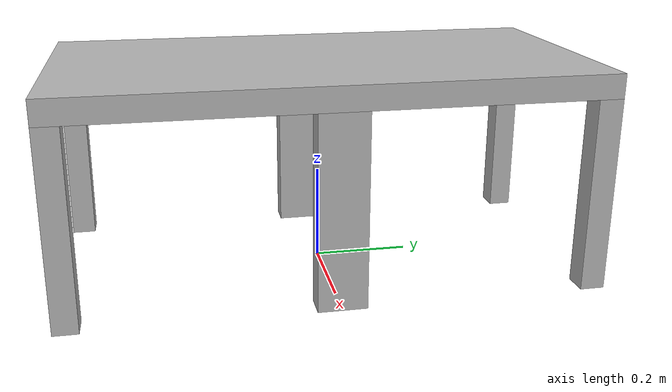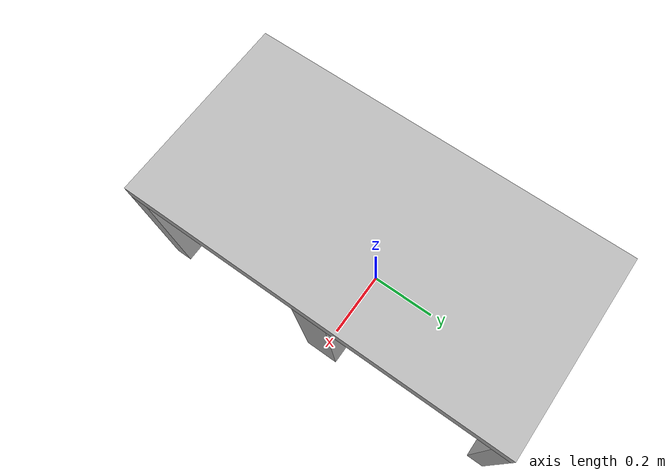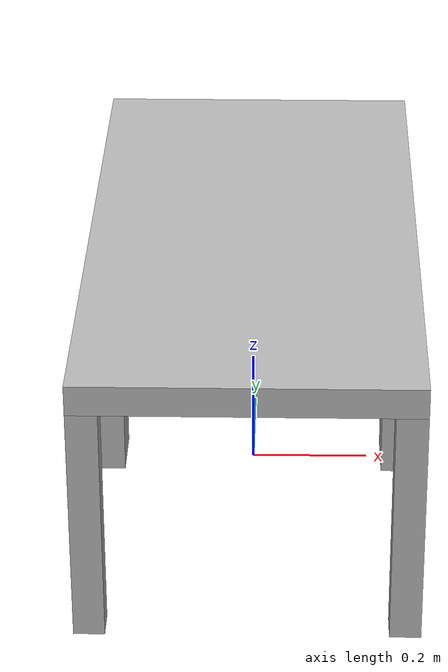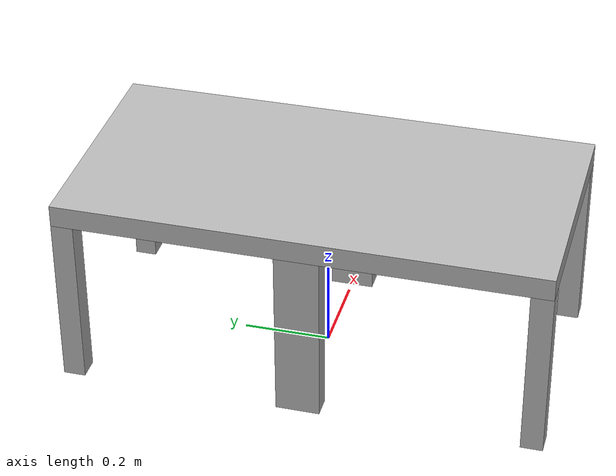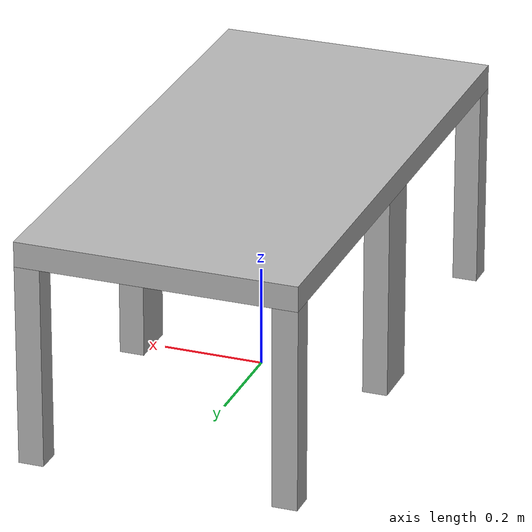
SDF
<?xml version="1.0" ?>
<sdf version="1.6">
  <model name="rwc2022/couch_table">
    <static>true</static>
    <link name="1_link">
      <collision name="1_col">
        <geometry>
          <box>
            <size>0.55 1.1 0.05</size>
          </box>
        </geometry>
      </collision>
      <visual name="1_vis">
        <geometry>
          <box>
            <size>0.55 1.1 0.05</size>
          </box>
        </geometry>
      </visual>
      <pose>0.0 0.0 0.425 0 0 0</pose>
    </link>
    <link name="2_link">
      <collision name="2_col">
        <geometry>
          <box>
            <size>0.05 0.05 0.4</size>
          </box>
        </geometry>
      </collision>
      <visual name="2_vis">
        <geometry>
          <box>
            <size>0.05 0.05 0.4</size>
          </box>
        </geometry>
      </visual>
      <pose>-0.25 -0.525 0.2 0 0 0</pose>
    </link>
    <link name="3_link">
      <collision name="3_col">
        <geometry>
          <box>
            <size>0.05 0.05 0.4</size>
          </box>
        </geometry>
      </collision>
      <visual name="3_vis">
        <geometry>
          <box>
            <size>0.05 0.05 0.4</size>
          </box>
        </geometry>
      </visual>
      <pose>0.25 -0.525 0.2 0 0 0</pose>
    </link>
    <link name="4_link">
      <collision name="4_col">
        <geometry>
          <box>
            <size>0.05 0.05 0.4</size>
          </box>
        </geometry>
      </collision>
      <visual name="4_vis">
        <geometry>
          <box>
            <size>0.05 0.05 0.4</size>
          </box>
        </geometry>
      </visual>
      <pose>-0.25 0.525 0.2 0 0 0</pose>
    </link>
    <link name="5_link">
      <collision name="5_col">
        <geometry>
          <box>
            <size>0.05 0.05 0.4</size>
          </box>
        </geometry>
      </collision>
      <visual name="5_vis">
        <geometry>
          <box>
            <size>0.05 0.05 0.4</size>
          </box>
        </geometry>
      </visual>
      <pose>0.25 0.525 0.2 0 0 0</pose>
    </link>
    <link name="6_link">
      <collision name="6_col">
        <geometry>
          <box>
            <size>0.05 0.1 0.4</size>
          </box>
        </geometry>
      </collision>
      <visual name="6_vis">
        <geometry>
          <box>
            <size>0.05 0.1 0.4</size>
          </box>
        </geometry>
      </visual>
      <pose>0.25 0.0 0.2 0 0 0</pose>
    </link>
    <link name="7_link">
      <collision name="7_col">
        <geometry>
          <box>
            <size>0.05 0.1 0.4</size>
          </box>
        </geometry>
      </collision>
      <visual name="7_vis">
        <geometry>
          <box>
            <size>0.05 0.1 0.4</size>
          </box>
        </geometry>
      </visual>
      <pose>-0.25 0.0 0.2 0 0 0</pose>
    </link>
    <link name="on_top_of">
      <virtual_volume name="on_top_of_vv">
        <geometry>
          <box>
            <size>0.53 1.04 0.25</size>
          </box>
        </geometry>
        <pose>0.0 0.0 0.595 0 0 0</pose>
      </virtual_volume>
    </link>
    <link name="in_front_of">
      <virtual_volume name="in_front_of_vv">
        <geometry>
          <box>
            <size>0.2 0.45 0.01</size>
          </box>
        </geometry>
        <pose>0.775 0.0 0.005 0 0 0</pose>
      </virtual_volume>
    </link>
  </model>
</sdf>
